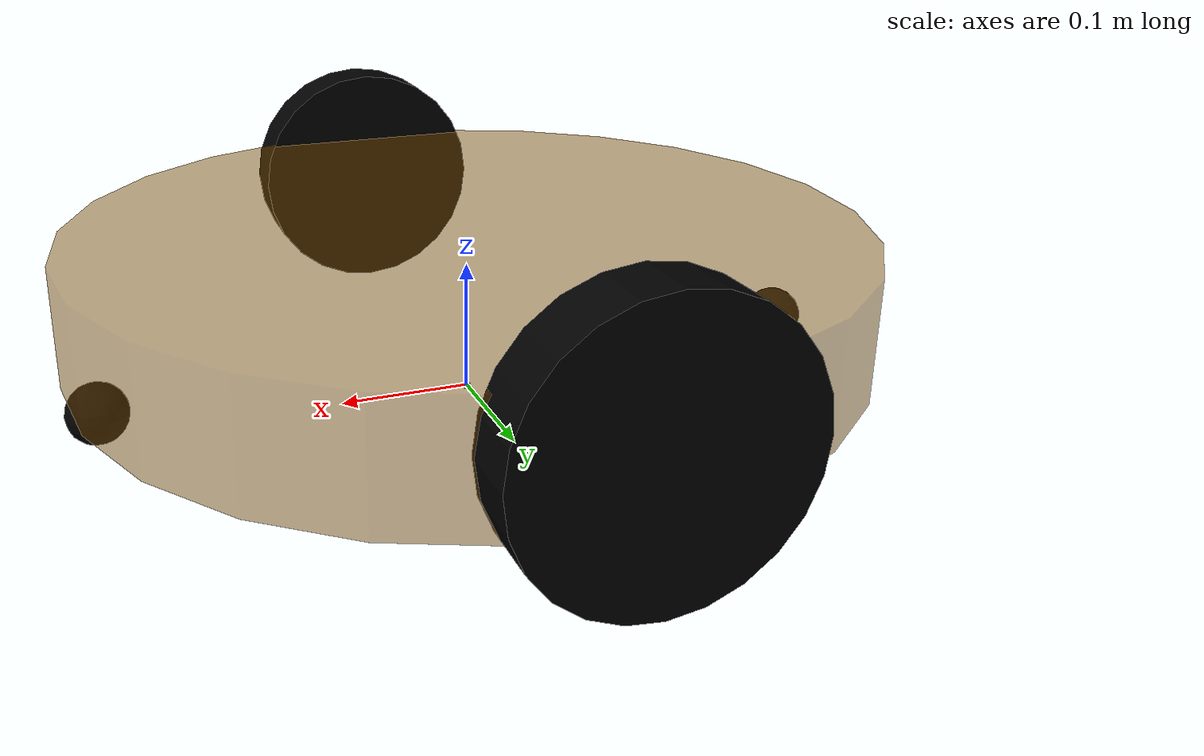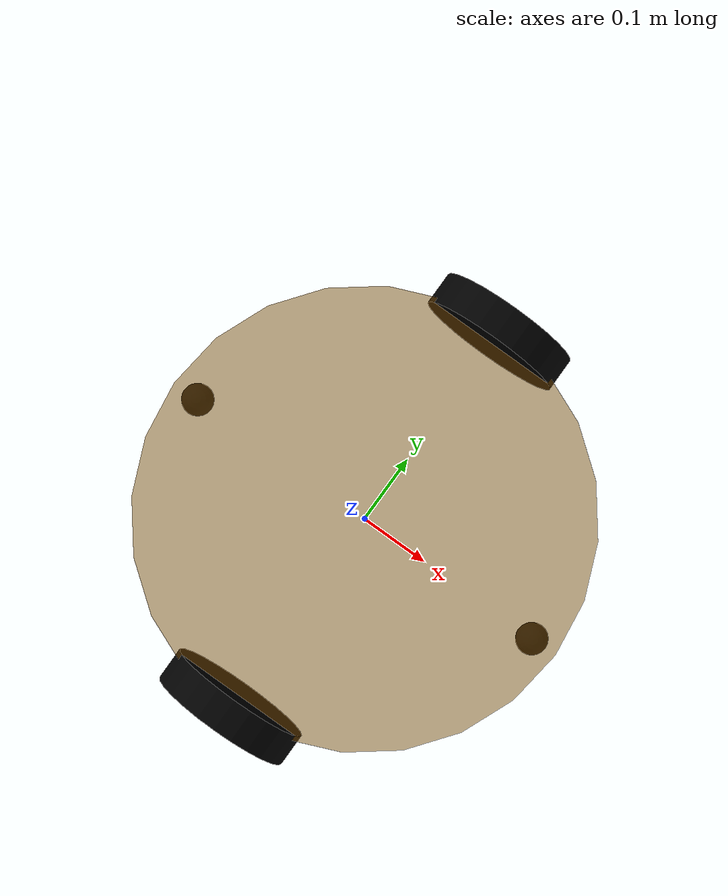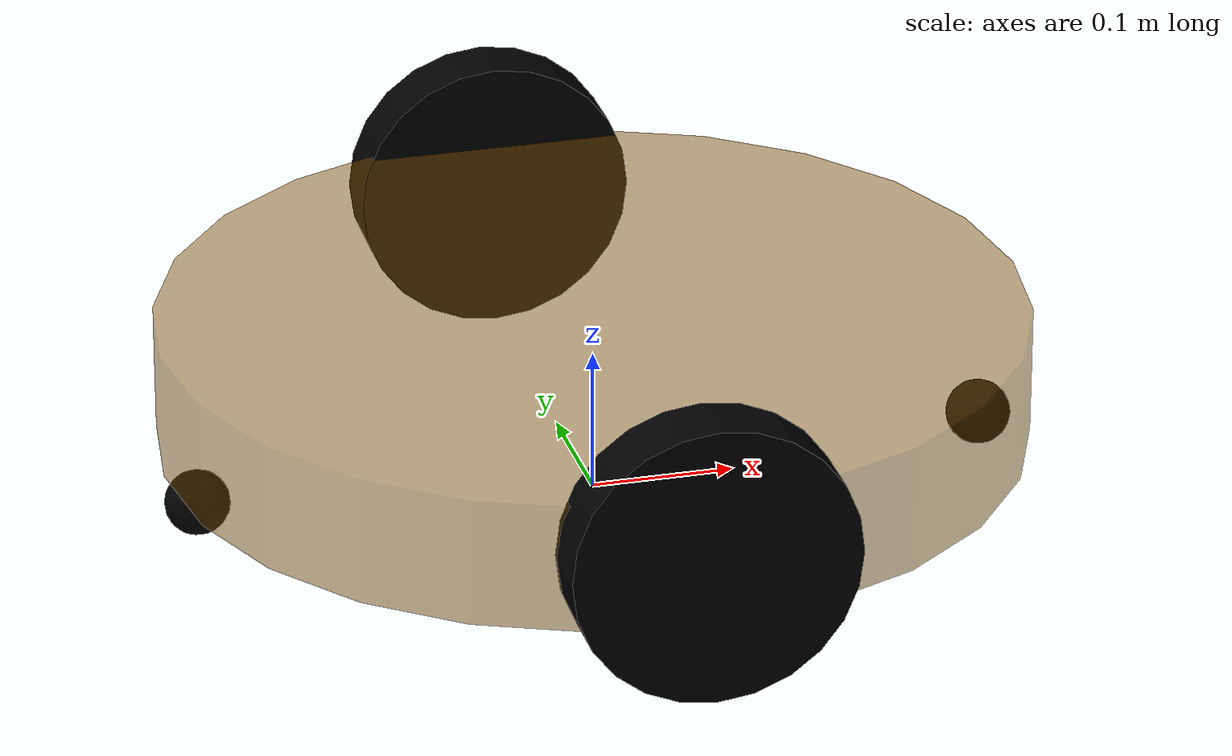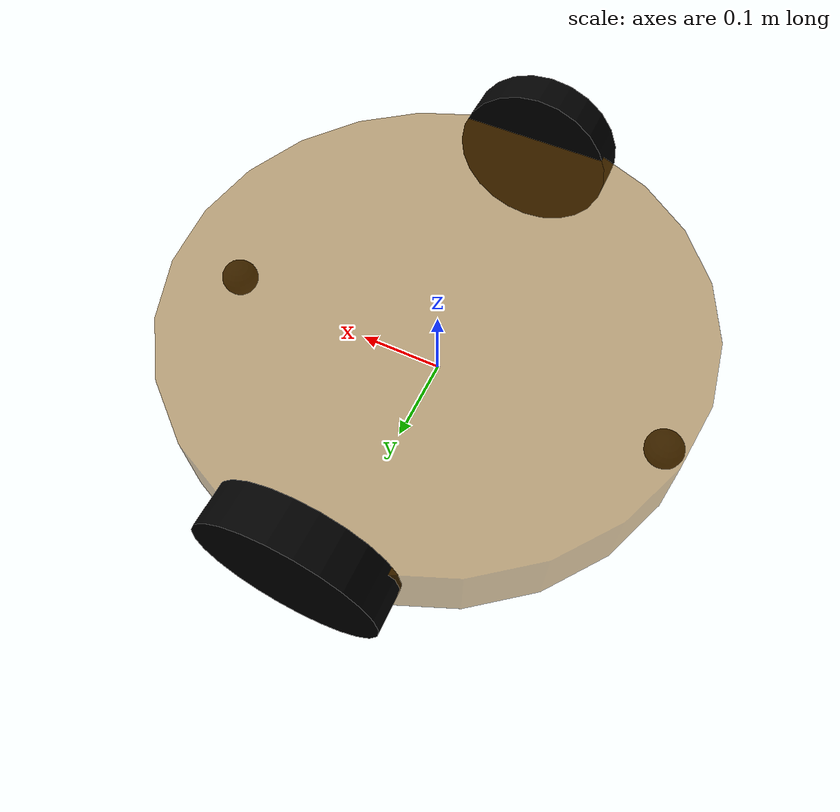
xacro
<!-- 根标签，必须声明 xmlns:xacro -->
<robot name="my_base" xmlns:xacro="http://www.ros.org/wiki/xacro">
    <!-- 封装变量、常量 -->
    <!-- PI 值设置精度需要高一些，否则后续车轮翻转量计算时，可能会出现肉眼不能察觉的车轮倾斜，从而导致模型抖动 -->
    <xacro:property name="PI" value="3.1415926" />
    <!-- 宏:黑色设置 -->
    <material name="black">
        <color rgba="0.0 0.0 0.0 1.0" />
    </material>
    <!-- 底盘属性 -->
    <xacro:property name="scale" value="3" />
    <xacro:property name="base_car_footprint_radius" value="${scale * 0.001}" /> <!--
    base_car_footprint 半径  -->
    <xacro:property name="base_car_link_radius" value="${scale * 0.1}" /> <!-- base_car_link 半径 -->
    <xacro:property name="base_car_link_length" value="${scale * 0.03}" /> <!-- base_car_link 长 -->
    <xacro:property name="earth_space" value="${scale * 0.015}" /> <!-- 离地间距 -->
    <xacro:property name="base_car_link_m" value="${scale *1}" /> <!-- 质量  -->

    <!-- 底盘 -->
    <link name="base_car_footprint">
        <visual>
            <geometry>
                <sphere radius="${base_car_footprint_radius}" />
            </geometry>
        </visual>
    </link>

    <link name="base_car_link">
        <visual>
            <geometry>
                <cylinder radius="${base_car_link_radius}" length="${base_car_link_length}" />
            </geometry>
            <origin xyz="0 0 0" rpy="0 0 0" />
            <material name="yellow">
                <color rgba="0.5 0.3 0.0 0.5" />
            </material>
        </visual>
        <!-- 与rviz不同（1）：gazebo的urdf或xacro文件中必须设置碰撞 -->
        <collision>
            <geometry>
                <cylinder radius="${base_car_link_radius}" length="${base_car_link_length}" />
            </geometry>
            <origin xyz="0 0 0" rpy="0 0 0" />
        </collision>
        <!-- 与rviz不同（2）：使用在head.xacro中封装过的inertial标签 -->
        <xacro:cylinder_inertial_matrix m="${base_car_link_m}" r="${base_car_link_radius}"
            h="${base_car_link_length}" />
    </link>

    <joint name="base_car_link2base_car_footprint" type="fixed">
        <parent link="base_car_footprint" />
        <child link="base_car_link" />
        <origin xyz="0 0 ${earth_space + base_car_link_length / 2 }" />
    </joint>

    <gazebo reference="base_car_link">
        <!-- 与rviz不同（3）：重新设置颜色 -->
        <material>Gazebo/Yellow</material>
    </gazebo>

    <!-- 驱动轮 -->
    <!-- 驱动轮属性 -->
    <xacro:property name="wheel_radius" value="${scale * 0.0325}" /> <!-- 半径 -->
    <xacro:property name="wheel_length" value="${scale * 0.015}" /> <!-- 宽度 -->
    <xacro:property name="wheel_m" value="${scale * 0.05}" /> <!-- 质量  -->

    <!-- 驱动轮宏实现 -->
    <xacro:macro name="add_wheels" params="name flag">
        <link name="${name}_wheel">
            <visual>
                <geometry>
                    <cylinder radius="${wheel_radius}" length="${wheel_length}" />
                </geometry>
                <origin xyz="0.0 0.0 0.0" rpy="${PI / 2} 0.0 0.0" />
                <material name="black" />
            </visual>
            <collision>
                <geometry>
                    <cylinder radius="${wheel_radius}" length="${wheel_length}" />
                </geometry>
                <origin xyz="0.0 0.0 0.0" rpy="${PI / 2} 0.0 0.0" />
            </collision>
            <xacro:cylinder_inertial_matrix m="${wheel_m}" r="${wheel_radius}" h="${wheel_length}" />
        </link>

        <joint name="${name}_wheel2base_car_link" type="continuous">
            <parent link="base_car_link" />
            <child link="${name}_wheel" />
            <origin
                xyz="0 ${flag * base_car_link_radius} ${-(earth_space + base_car_link_length / 2 - wheel_radius) }" />
            <axis xyz="0 1 0" />
        </joint>

        <gazebo reference="${name}_wheel">
            <material>Gazebo/Red</material>
        </gazebo>
    </xacro:macro>

    <xacro:add_wheels name="left" flag="1" />
    <xacro:add_wheels name="right" flag="-1" />

    <!-- 支撑轮 -->
    <!-- 支撑轮属性 -->
    <xacro:property name="support_wheel_radius" value="${scale * 0.0075}" /> <!-- 支撑轮半径 -->
    <xacro:property name="support_wheel_m" value="0.03" /> <!-- 质量  -->

    <!-- 支撑轮宏 -->
    <xacro:macro name="add_support_wheel" params="name flag">
        <link name="${name}_wheel">
            <visual>
                <geometry>
                    <sphere radius="${support_wheel_radius}" />
                </geometry>
                <origin xyz="0 0 0" rpy="0 0 0" />
                <material name="black" />
            </visual>
            <collision>
                <geometry>
                    <sphere radius="${support_wheel_radius}" />
                </geometry>
                <origin xyz="0 0 0" rpy="0 0 0" />
            </collision>
            <xacro:sphere_inertial_matrix m="${support_wheel_m}" r="${support_wheel_radius}" />
        </link>

        <joint name="${name}_wheel2base_car_link" type="continuous">
            <parent link="base_car_link" />
            <child link="${name}_wheel" />
            <origin
                xyz="${flag * (base_car_link_radius - support_wheel_radius)} 0 ${-(base_car_link_length / 2 + earth_space / 2)}" />
            <axis xyz="1 1 1" />
        </joint>

        <gazebo reference="${name}_wheel">
            <material>Gazebo/Red</material>
        </gazebo>
    </xacro:macro>

    <xacro:add_support_wheel name="front" flag="1" />
    <xacro:add_support_wheel name="back" flag="-1" />

</robot>
